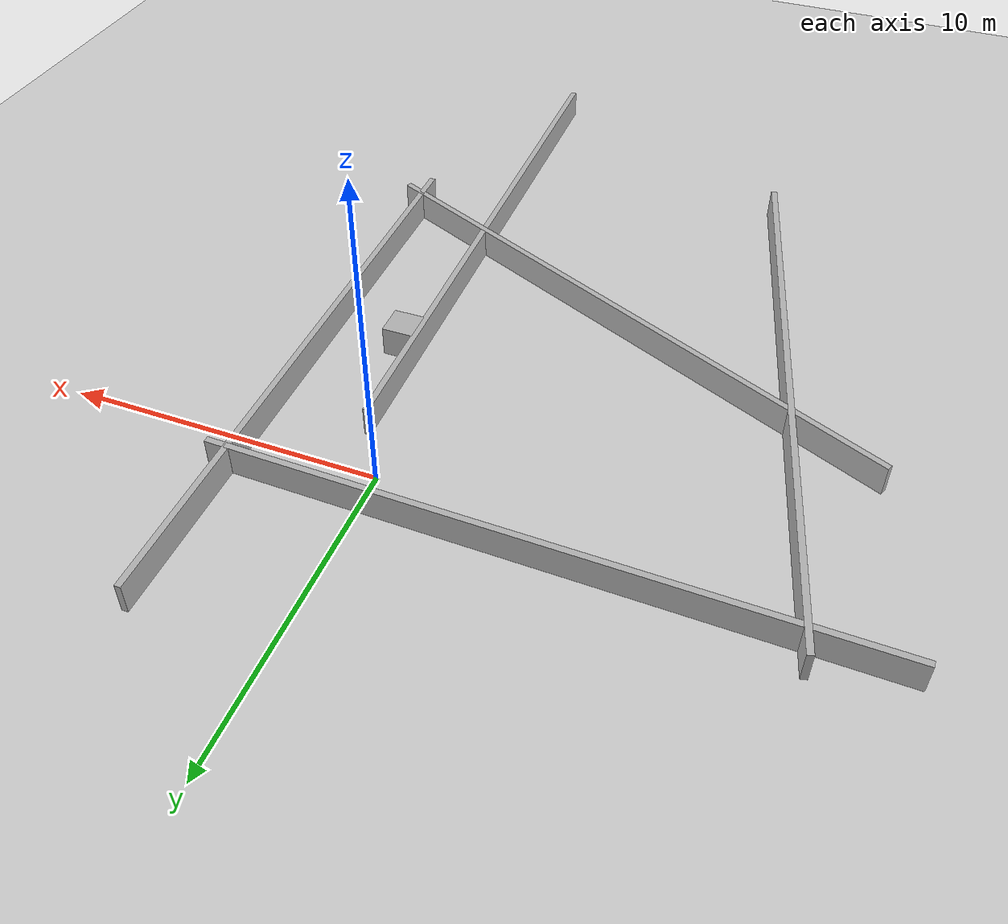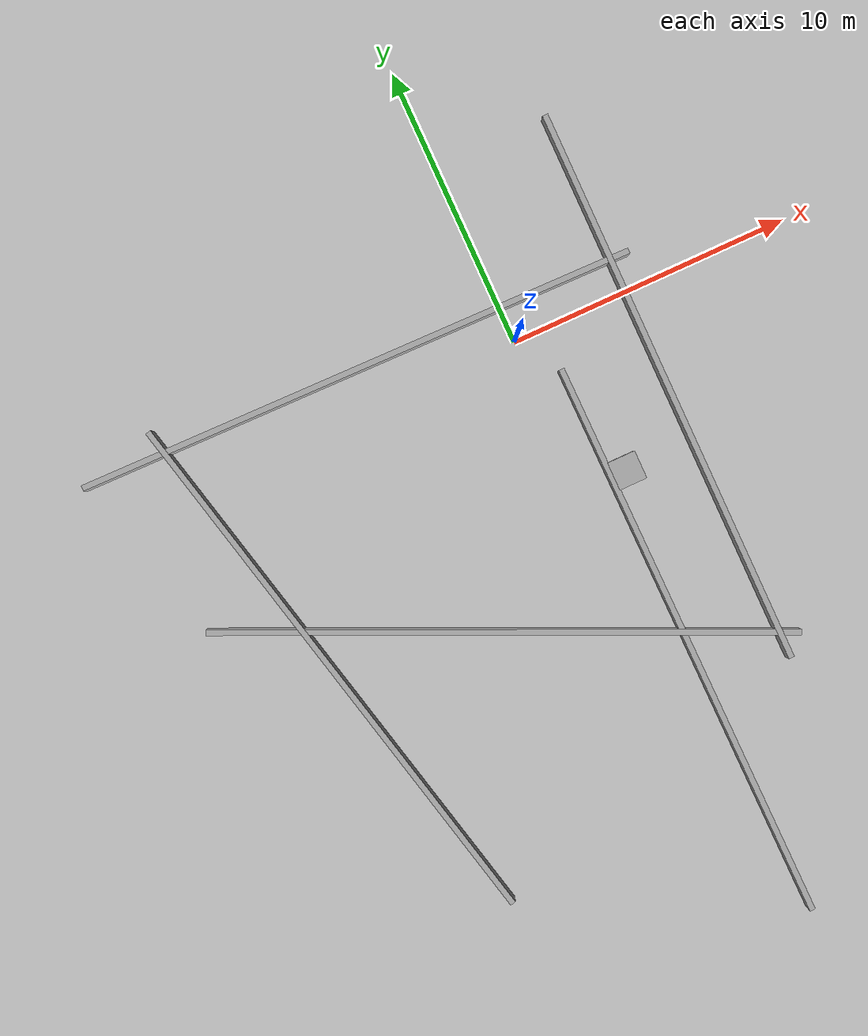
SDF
<sdf version='1.9'>
  <world name='simpel_world'>
    <physics name='1ms' type='ignored'>
      <max_step_size>0.001</max_step_size>
      <real_time_factor>1</real_time_factor>
      <real_time_update_rate>1000</real_time_update_rate>
    </physics>
    <plugin name='ignition::gazebo::systems::Physics' filename='libignition-gazebo-physics-system.so'/>
    <plugin name='ignition::gazebo::systems::UserCommands' filename='libignition-gazebo-user-commands-system.so'/>
    <plugin name='ignition::gazebo::systems::SceneBroadcaster' filename='libignition-gazebo-scene-broadcaster-system.so'/>
    <plugin name='ignition::gazebo::systems::Sensors' filename='libignition-gazebo-sensors-system.so'>
      <render_engine>ogre2</render_engine>
    </plugin>
    <plugin name='ignition::gazebo::systems::Imu' filename='libignition-gazebo-imu-system.so'/>
    <gravity>0 0 -9.82</gravity>
    <magnetic_field>6e-06 2.3e-05 -4.2e-05</magnetic_field>
    <atmosphere type='adiabatic'/>
    <scene>
      <ambient>0.4 0.4 0.4 1</ambient>
      <background>0.7 0.7 0.7 1</background>
      <shadows>true</shadows>
    </scene>
    <model name='ground_plane'>
      <static>true</static>
      <link name='link'>
        <collision name='collision'>
          <geometry>
            <plane>
              <normal>0 0 1</normal>
              <size>1 1</size>
            </plane>
          </geometry>
          <surface>
            <friction>
              <ode/>
            </friction>
            <bounce/>
            <contact/>
          </surface>
        </collision>
        <visual name='visual'>
          <geometry>
            <plane>
              <normal>0 0 1</normal>
              <size>100 100</size>
            </plane>
          </geometry>
          <material>
            <ambient>0.8 0.8 0.8 1</ambient>
            <diffuse>0.8 0.8 0.8 1</diffuse>
            <specular>0.8 0.8 0.8 1</specular>
          </material>
        </visual>
        <pose>0 0 0 0 -0 0</pose>
        <inertial>
          <pose>0 0 0 0 -0 0</pose>
          <mass>1</mass>
          <inertia>
            <ixx>1</ixx>
            <ixy>0</ixy>
            <ixz>0</ixz>
            <iyy>1</iyy>
            <iyz>0</iyz>
            <izz>1</izz>
          </inertia>
        </inertial>
        <enable_wind>false</enable_wind>
      </link>
      <pose>0 0 0 0 -0 0</pose>
      <self_collide>false</self_collide>
    </model>
    <model name='box'>
      <pose>1.06202 -11.5264 0.499962 -0 2e-06 -1.56412</pose>
      <link name='box_link'>
        <collision name='box_collision'>
          <geometry>
            <box>
              <size>20 0.2 1</size>
            </box>
          </geometry>
          <surface>
            <friction>
              <ode/>
            </friction>
            <bounce/>
            <contact/>
          </surface>
        </collision>
        <visual name='box_visual'>
          <geometry>
            <box>
              <size>20 0.2 1</size>
            </box>
          </geometry>
          <material>
            <ambient>0.3 0.3 0.3 1</ambient>
            <diffuse>0.7 0.7 0.7 1</diffuse>
            <specular>1 1 1 1</specular>
          </material>
        </visual>
        <pose>0 0 0 0 -0 0</pose>
        <enable_wind>false</enable_wind>
        <inertial>
          <pose>0 0 0 0 -0 0</pose>
          <mass>1</mass>
          <inertia>
            <ixx>1</ixx>
            <ixy>0</ixy>
            <ixz>0</ixz>
            <iyy>1</iyy>
            <iyz>0</iyz>
            <izz>1</izz>
          </inertia>
        </inertial>
      </link>
      <static>false</static>
      <self_collide>false</self_collide>
    </model>
    <model name='box_1'>
      <pose>4.02204 -3.53884 0.499999 -0 -0 1.56905</pose>
      <link name='box_link'>
        <collision name='box_collision'>
          <geometry>
            <box>
              <size>20 0.2 1</size>
            </box>
          </geometry>
          <surface>
            <friction>
              <ode/>
            </friction>
            <bounce/>
            <contact/>
          </surface>
        </collision>
        <visual name='box_visual'>
          <geometry>
            <box>
              <size>20 0.2 1</size>
            </box>
          </geometry>
          <material>
            <ambient>0.3 0.3 0.3 1</ambient>
            <diffuse>0.7 0.7 0.7 1</diffuse>
            <specular>1 1 1 1</specular>
          </material>
        </visual>
        <pose>0 0 0 0 -0 0</pose>
        <enable_wind>false</enable_wind>
        <inertial>
          <pose>0 0 0 0 -0 0</pose>
          <mass>1</mass>
          <inertia>
            <ixx>1</ixx>
            <ixy>0</ixy>
            <ixz>0</ixz>
            <iyy>1</iyy>
            <iyz>0</iyz>
            <izz>1</izz>
          </inertia>
        </inertial>
      </link>
      <static>false</static>
      <self_collide>false</self_collide>
    </model>
    <model name='box_2'>
      <pose>-4.43636 -8.74436 0.5 0 -0 -0.427375</pose>
      <link name='box_link'>
        <collision name='box_collision'>
          <geometry>
            <box>
              <size>20 0.2 1</size>
            </box>
          </geometry>
          <surface>
            <friction>
              <ode/>
            </friction>
            <bounce/>
            <contact/>
          </surface>
        </collision>
        <visual name='box_visual'>
          <geometry>
            <box>
              <size>20 0.2 1</size>
            </box>
          </geometry>
          <material>
            <ambient>0.3 0.3 0.3 1</ambient>
            <diffuse>0.7 0.7 0.7 1</diffuse>
            <specular>1 1 1 1</specular>
          </material>
        </visual>
        <pose>0 0 0 0 -0 0</pose>
        <enable_wind>false</enable_wind>
        <inertial>
          <pose>0 0 0 0 -0 0</pose>
          <mass>1</mass>
          <inertia>
            <ixx>1</ixx>
            <ixy>0</ixy>
            <ixz>0</ixz>
            <iyy>1</iyy>
            <iyz>0</iyz>
            <izz>1</izz>
          </inertia>
        </inertial>
      </link>
      <static>false</static>
      <self_collide>false</self_collide>
    </model>
    <model name='box_2_1'>
      <pose>-5.28964 1.33802 0.5 -0 -0 -0.01826</pose>
      <link name='box_link'>
        <collision name='box_collision'>
          <geometry>
            <box>
              <size>20 0.2 1</size>
            </box>
          </geometry>
          <surface>
            <friction>
              <ode/>
            </friction>
            <bounce/>
            <contact/>
          </surface>
        </collision>
        <visual name='box_visual'>
          <geometry>
            <box>
              <size>20 0.2 1</size>
            </box>
          </geometry>
          <material>
            <ambient>0.3 0.3 0.3 1</ambient>
            <diffuse>0.7 0.7 0.7 1</diffuse>
            <specular>1 1 1 1</specular>
          </material>
        </visual>
        <pose>0 0 0 0 -0 0</pose>
        <enable_wind>false</enable_wind>
        <inertial>
          <pose>0 0 0 0 -0 0</pose>
          <mass>1</mass>
          <inertia>
            <ixx>1</ixx>
            <ixy>0</ixy>
            <ixz>0</ixz>
            <iyy>1</iyy>
            <iyz>0</iyz>
            <izz>1</izz>
          </inertia>
        </inertial>
      </link>
      <static>false</static>
      <self_collide>false</self_collide>
    </model>
    <model name='box_1_1'>
      <pose>-10.2145 -7.41995 0.500012 -1e-06 0 1.80188</pose>
      <link name='box_link'>
        <collision name='box_collision'>
          <geometry>
            <box>
              <size>20 0.2 1</size>
            </box>
          </geometry>
          <surface>
            <friction>
              <ode/>
            </friction>
            <bounce/>
            <contact/>
          </surface>
        </collision>
        <visual name='box_visual'>
          <geometry>
            <box>
              <size>20 0.2 1</size>
            </box>
          </geometry>
          <material>
            <ambient>0.3 0.3 0.3 1</ambient>
            <diffuse>0.7 0.7 0.7 1</diffuse>
            <specular>1 1 1 1</specular>
          </material>
        </visual>
        <pose>0 0 0 0 -0 0</pose>
        <enable_wind>false</enable_wind>
        <inertial>
          <pose>0 0 0 0 -0 0</pose>
          <mass>1</mass>
          <inertia>
            <ixx>1</ixx>
            <ixy>0</ixy>
            <ixz>0</ixz>
            <iyy>1</iyy>
            <iyz>0</iyz>
            <izz>1</izz>
          </inertia>
        </inertial>
      </link>
      <static>false</static>
      <self_collide>false</self_collide>
    </model>
    <model name='box_0'>
      <pose>1.59085 -5.5324 0.5 0 -0 0</pose>
      <link name='box_link'>
        <inertial>
          <inertia>
            <ixx>0.16666</ixx>
            <ixy>0</ixy>
            <ixz>0</ixz>
            <iyy>0.16666</iyy>
            <iyz>0</iyz>
            <izz>0.16666</izz>
          </inertia>
          <mass>1</mass>
          <pose>0 0 0 0 -0 0</pose>
        </inertial>
        <collision name='box_collision'>
          <geometry>
            <box>
              <size>1 1 1</size>
            </box>
          </geometry>
          <surface>
            <friction>
              <ode/>
            </friction>
            <bounce/>
            <contact/>
          </surface>
        </collision>
        <visual name='box_visual'>
          <geometry>
            <box>
              <size>1 1 1</size>
            </box>
          </geometry>
          <material>
            <ambient>0.3 0.3 0.3 1</ambient>
            <diffuse>0.7 0.7 0.7 1</diffuse>
            <specular>1 1 1 1</specular>
          </material>
        </visual>
        <pose>0 0 0 0 -0 0</pose>
        <enable_wind>false</enable_wind>
      </link>
      <static>false</static>
      <self_collide>false</self_collide>
    </model>
    <light name='sun' type='directional'>
      <pose>0 0 10 0 -0 0</pose>
      <cast_shadows>true</cast_shadows>
      <intensity>1</intensity>
      <direction>-0.5 0.1 -0.9</direction>
      <diffuse>0.8 0.8 0.8 1</diffuse>
      <specular>0.2 0.2 0.2 1</specular>
      <attenuation>
        <range>1000</range>
        <linear>0.01</linear>
        <constant>0.90000000000000002</constant>
        <quadratic>0.001</quadratic>
      </attenuation>
      <spot>
        <inner_angle>0</inner_angle>
        <outer_angle>0</outer_angle>
        <falloff>0</falloff>
      </spot>
    </light>
  </world>
</sdf>
